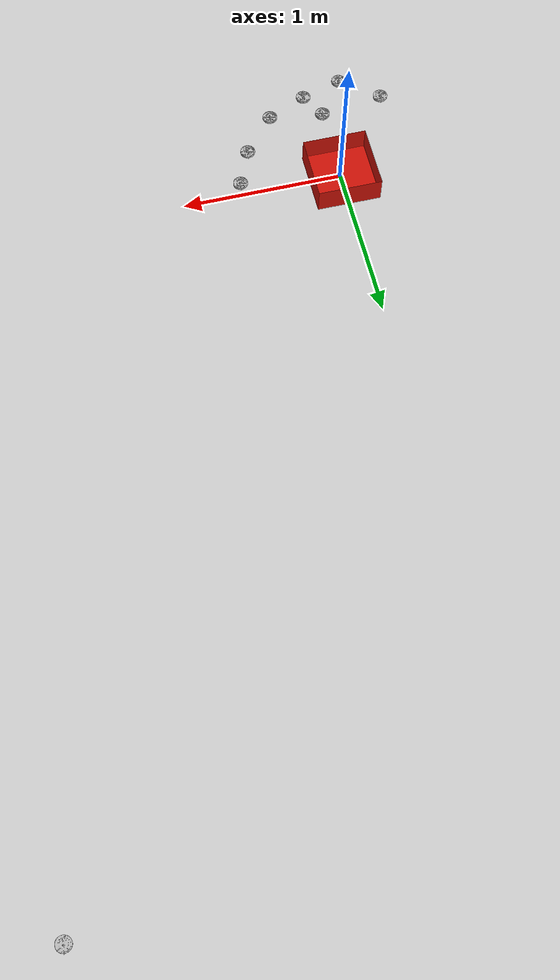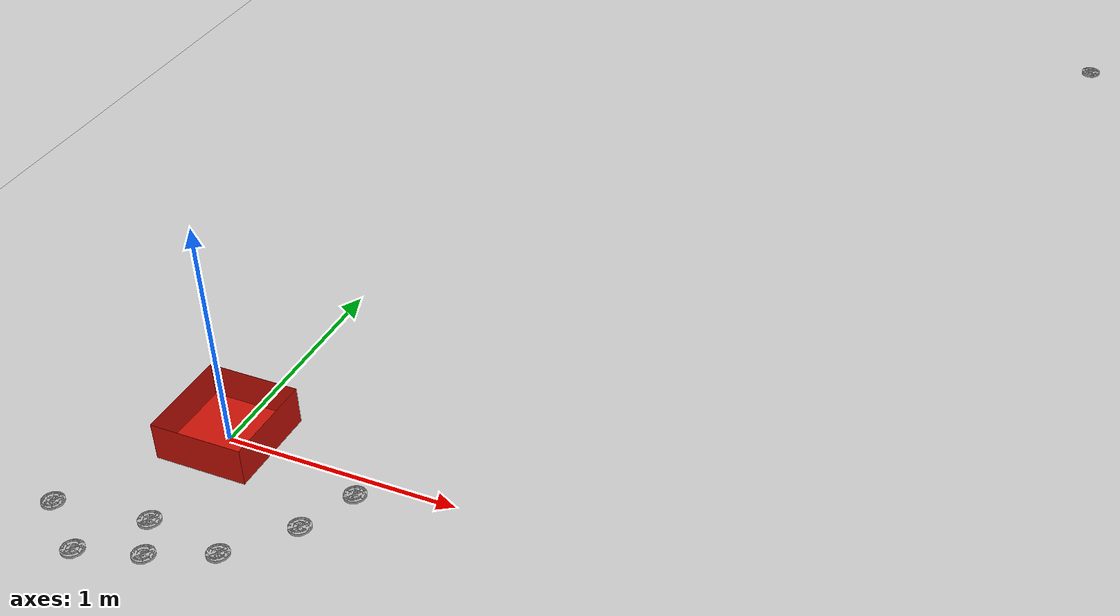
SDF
<sdf version="1.7">
 <world name="default">
  <light name="sun" type="directional">
   <pose>0 0 10 0 -0 0</pose>
   <diffuse>0.8 0.8 0.8 1</diffuse>
   <specular>0.2 0.2 0.2 1</specular>
   <attenuation>
    <range>1000</range>
    <constant>0.9</constant>
    <linear>0.01</linear>
    <quadratic>0.001</quadratic>
   </attenuation>
   <direction>-0.5 0.1 -0.9</direction>
   <spot><inner_angle>0</inner_angle><outer_angle>0</outer_angle><falloff>0</falloff></spot>
  </light>
  <model name="ground_plane">
   <static>1</static>
   <link name="link">
    <collision name="collision">
     <geometry><plane><normal>0 0 1</normal><size>100 100</size></plane></geometry>
     <surface>
      <contact><collide_bitmask>65535</collide_bitmask></contact>
      <friction><ode><mu>100</mu><mu2>50</mu2></ode></friction>
     </surface>
    </collision>
    <visual name="visual">
     <cast_shadows>0</cast_shadows>
     <geometry><plane><normal>0 0 1</normal><size>100 100</size></plane></geometry>
     <material>
      <script><uri>file://media/materials/scripts/gazebo.material</uri><name>Gazebo/Grey</name></script>
     </material>
    </visual>
   </link>
  </model>
  <gravity>0 0 -9.8</gravity>
  <magnetic_field>6e-06 2.3e-05 -4.2e-05</magnetic_field>
  <atmosphere type="adiabatic"/>
  <physics type="ode">
   <max_step_size>0.001</max_step_size>
   <real_time_factor>1</real_time_factor>
   <real_time_update_rate>1000</real_time_update_rate>
  </physics>
  <scene><ambient>0.4 0.4 0.4 1</ambient><background>0.7 0.7 0.7 1</background><shadows>1</shadows></scene>
  <spherical_coordinates>
   <surface_model>EARTH_WGS84</surface_model>
   <latitude_deg>0</latitude_deg>
   <longitude_deg>0</longitude_deg>
   <elevation>0</elevation>
   <heading_deg>0</heading_deg>
  </spherical_coordinates>
  <model name="object_box">
   <pose>-0.00545 0.0078 0 0 -0 0</pose>
   <static>1</static>
   <link name="object_box">
    <inertial>
     <mass>0.2</mass>
     <inertia><ixx>0.0005</ixx><ixy>0</ixy><ixz>0</ixz><iyy>0.0005</iyy><iyz>0</iyz><izz>0.0005</izz></inertia>
    </inertial>
    <collision name="collision">
     <geometry><mesh><uri>model://object_box/meshed/object_box.dae</uri></mesh></geometry>
    </collision>
    <visual name="visual">
     <geometry><mesh><uri>model://object_box/meshed/object_box.dae</uri></mesh></geometry>
    </visual>
   </link>
  </model>
  <model name="HV8">
   <pose>2.54538 4.22939 -2e-06 8e-05 1.5e-05 5.5e-05</pose>
   <static>0</static>
   <link name="HV8">
    <inertial>
     <mass>0.2</mass>
     <inertia><ixx>0.0005</ixx><ixy>0</ixy><ixz>0</ixz><iyy>0.0005</iyy><iyz>0</iyz><izz>0.0005</izz></inertia>
    </inertial>
    <collision name="collishin">
     <geometry><mesh><uri>model://HV8/meshes/HV8_1.stl</uri></mesh></geometry>
    </collision>
    <visual name="visual"><geometry><mesh><uri>model://HV8/meshes/HV8_1.stl</uri></mesh></geometry></visual>
   </link>
  </model>
  <model name="HV8_0">
   <pose>-0.413808 -0.554871 -2e-06 8e-05 1.5e-05 5.6e-05</pose>
   <static>0</static>
   <link name="HV8">
    <inertial>
     <mass>0.2</mass>
     <inertia><ixx>0.0005</ixx><ixy>0</ixy><ixz>0</ixz><iyy>0.0005</iyy><iyz>0</iyz><izz>0.0005</izz></inertia>
    </inertial>
    <collision name="collishin">
     <geometry><mesh><uri>model://HV8/meshes/HV8_1.stl</uri></mesh></geometry>
    </collision>
    <visual name="visual"><geometry><mesh><uri>model://HV8/meshes/HV8_1.stl</uri></mesh></geometry></visual>
   </link>
  </model>
  <model name="HV8_1">
   <pose>0.071455 -0.657806 4e-06 -0.000242 -5.7e-05 4.7e-05</pose>
   <static>0</static>
   <link name="HV8">
    <inertial>
     <mass>0.2</mass>
     <inertia><ixx>0.0005</ixx><ixy>0</ixy><ixz>0</ixz><iyy>0.0005</iyy><iyz>0</iyz><izz>0.0005</izz></inertia>
    </inertial>
    <collision name="collishin">
     <geometry><mesh><uri>model://HV8/meshes/HV8_1.stl</uri></mesh></geometry>
    </collision>
    <visual name="visual"><geometry><mesh><uri>model://HV8/meshes/HV8_1.stl</uri></mesh></geometry></visual>
   </link>
  </model>
  <model name="HV8_2">
   <pose>0.319121 -0.548993 -1e-06 -3.2e-05 2.4e-05 4.5e-05</pose>
   <static>0</static>
   <link name="HV8">
    <inertial>
     <mass>0.2</mass>
     <inertia><ixx>0.0005</ixx><ixy>0</ixy><ixz>0</ixz><iyy>0.0005</iyy><iyz>0</iyz><izz>0.0005</izz></inertia>
    </inertial>
    <collision name="collishin">
     <geometry><mesh><uri>model://HV8/meshes/HV8_1.stl</uri></mesh></geometry>
    </collision>
    <visual name="visual"><geometry><mesh><uri>model://HV8/meshes/HV8_1.stl</uri></mesh></geometry></visual>
   </link>
  </model>
  <model name="HV8_3">
   <pose>-0.015543 -0.500378 5e-06 -6e-05 -9.1e-05 4.4e-05</pose>
   <static>0</static>
   <link name="HV8">
    <inertial>
     <mass>0.2</mass>
     <inertia><ixx>0.0005</ixx><ixy>0</ixy><ixz>0</ixz><iyy>0.0005</iyy><iyz>0</iyz><izz>0.0005</izz></inertia>
    </inertial>
    <collision name="collishin">
     <geometry><mesh><uri>model://HV8/meshes/HV8_1.stl</uri></mesh></geometry>
    </collision>
    <visual name="visual"><geometry><mesh><uri>model://HV8/meshes/HV8_1.stl</uri></mesh></geometry></visual>
   </link>
  </model>
  <model name="HV8_4">
   <pose>0.519956 -0.3171 -0 3.3e-05 6e-06 4.3e-05</pose>
   <static>0</static>
   <link name="HV8">
    <inertial>
     <mass>0.2</mass>
     <inertia><ixx>0.0005</ixx><ixy>0</ixy><ixz>0</ixz><iyy>0.0005</iyy><iyz>0</iyz><izz>0.0005</izz></inertia>
    </inertial>
    <collision name="collishin">
     <geometry><mesh><uri>model://HV8/meshes/HV8_1.stl</uri></mesh></geometry>
    </collision>
    <visual name="visual"><geometry><mesh><uri>model://HV8/meshes/HV8_1.stl</uri></mesh></geometry></visual>
   </link>
  </model>
  <model name="HV8_5">
   <pose>-0.183859 -0.733533 -2e-06 -1.1e-05 -6e-05 4.3e-05</pose>
   <static>0</static>
   <link name="HV8">
    <inertial>
     <mass>0.2</mass>
     <inertia><ixx>0.0005</ixx><ixy>0</ixy><ixz>0</ixz><iyy>0.0005</iyy><iyz>0</iyz><izz>0.0005</izz></inertia>
    </inertial>
    <collision name="collishin">
     <geometry><mesh><uri>model://HV8/meshes/HV8_1.stl</uri></mesh></geometry>
    </collision>
    <visual name="visual"><geometry><mesh><uri>model://HV8/meshes/HV8_1.stl</uri></mesh></geometry></visual>
   </link>
  </model>
  <model name="HV8_6">
   <pose>0.619995 -0.08983 -0 1e-06 1.6e-05 4.2e-05</pose>
   <static>0</static>
   <link name="HV8">
    <inertial>
     <mass>0.2</mass>
     <inertia><ixx>0.0005</ixx><ixy>0</ixy><ixz>0</ixz><iyy>0.0005</iyy><iyz>0</iyz><izz>0.0005</izz></inertia>
    </inertial>
    <collision name="collishin">
     <geometry><mesh><uri>model://HV8/meshes/HV8_1.stl</uri></mesh></geometry>
    </collision>
    <visual name="visual"><geometry><mesh><uri>model://HV8/meshes/HV8_1.stl</uri></mesh></geometry></visual>
   </link>
  </model>
 </world>
</sdf>
